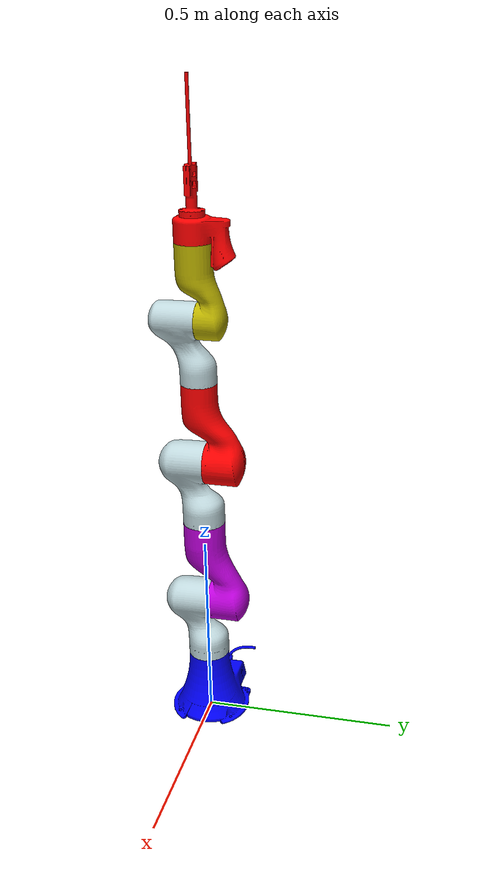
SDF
<?xml version="1.0"?>
<sdf version='1.10'>
  <world name="xmate_world">
    <model name='xmate'>
      <joint name="panda_joint_world" type="fixed">
        <parent>world</parent>
        <child>base_link</child>
    </joint>
      <link name='base_link'>
        <inertial>
          <pose>-0.019088000000000001 4.4427e-05 0.06241 0 0 0</pose>
          <mass>3.1488</mass>
          <inertia>
            <ixx>0.011844</ixx>
            <ixy>2.9235999999999999e-05</ixy>
            <ixz>-0.0019436</ixz>
            <iyy>0.016485</iyy>
            <iyz>5.2961e-06</iyz>
            <izz>0.013575</izz>
          </inertia>
        </inertial>
        <collision name='base_link_collision'>
          <pose>0 0 0 0 0 0</pose>
          <geometry>
            <mesh>
              <scale>1 1 1</scale>
              <uri>meshes/base_link.STL</uri>
            </mesh>
          </geometry>
        </collision>
        <visual name='base_link_visual'>
          <pose>0 0 0 0 0 0</pose>
          <geometry>
            <mesh>
              <scale>1 1 1</scale>
              <uri>meshes/base_link.STL</uri>
            </mesh>
          </geometry>
          <material>
            <diffuse>0.0 0.0 1.0 1</diffuse>
            <ambient>0.0 0.0 1.0 1</ambient>
            <specular>1.0 1.0 1.0 1</specular>
          </material>
        </visual>
      </link>
      <joint name='joint1' type='revolute'>
        <pose relative_to='base_link'>0 0 0.34150000000000003 0 0 0</pose>
        <parent>base_link</parent>
        <child>link1</child>
        <axis>
          <xyz>0 0 -1</xyz>
          <limit>
            <lower>-2.9670000000000001</lower>
            <upper>2.9670000000000001</upper>
            <effort>94</effort>
            <velocity>1.5708</velocity>
          </limit>
          <dynamics>
            <spring_reference>0</spring_reference>
            <spring_stiffness>0</spring_stiffness>
          </dynamics>
        </axis>
      </joint>
      <link name='link1'>
        <pose relative_to='joint1'>0 0 0 0 0 0</pose>
        <inertial>
          <pose>3.7179999999999998e-06 -0.025274000000000001 -0.053443999999999998 0 0 0</pose>
          <mass>1.8005</mass>
          <inertia>
            <ixx>0.0095697999999999998</ixx>
            <ixy>-6.8655999999999998e-07</ixy>
            <ixz>-4.8250000000000004e-07</ixz>
            <iyy>0.0085643000000000004</iyy>
            <iyz>0.0019572999999999999</iyz>
            <izz>0.0033056000000000001</izz>
          </inertia>
        </inertial>
        <collision name='link1_collision'>
          <pose>0 0 0 0 0 0</pose>
          <geometry>
            <mesh>
              <scale>1 1 1</scale>
              <uri>meshes/link1.STL</uri>
            </mesh>
          </geometry>
        </collision>
        <visual name='link1_visual'>
          <pose>0 0 0 0 0 0</pose>
          <geometry>
            <mesh>
              <scale>1 1 1</scale>
              <uri>meshes/link1.STL</uri>
            </mesh>
          </geometry>
          <material>
            <ambient>0.740199983 0.833337545 0.85293746 1</ambient>
            <specular>0.740199983 0.833337545 0.85293746 1</specular>
          </material>
        </visual>
      </link>
      <joint name='joint2' type='revolute'>
        <pose relative_to='link1'>0 0 0 1.5708 0 0</pose>
        <parent>link1</parent>
        <child>link2</child>
        <axis>
          <xyz>0 0 1</xyz>
          <limit>
            <lower>-2.0939999999999999</lower>
            <upper>2.0939999999999999</upper>
            <effort>110</effort>
            <velocity>1.5708</velocity>
          </limit>
          <dynamics>
            <spring_reference>0</spring_reference>
            <spring_stiffness>0</spring_stiffness>
          </dynamics>
        </axis>
      </joint>
      <link name='link2'>
        <pose relative_to='joint2'>0 0 0 0 0 0</pose>
        <inertial>
          <pose>-6.1017000000000004e-06 0.094687999999999994 -0.027636000000000001 0 0 0</pose>
          <mass>2.1852999999999998</mass>
          <inertia>
            <ixx>0.017961000000000001</ixx>
            <ixy>-2.0946e-07</ixy>
            <ixz>-7.2091000000000001e-07</ixz>
            <iyy>0.0044672999999999996</iyy>
            <iyz>-0.0045671000000000002</iyz>
            <izz>0.016295</izz>
          </inertia>
        </inertial>
        <collision name='link2_collision'>
          <pose>0 0 0 0 0 0</pose>
          <geometry>
            <mesh>
              <scale>1 1 1</scale>
              <uri>meshes/link2.STL</uri>
            </mesh>
          </geometry>
        </collision>
        <visual name='link2_visual'>
          <pose>0 0 0 0 0 0</pose>
          <geometry>
            <mesh>
              <scale>1 1 1</scale>
              <uri>meshes/link2.STL</uri>
            </mesh>
          </geometry>
          <material>
            <diffuse>0.740199983 0 0.85293746 1</diffuse>
            <ambient>0.740199983 0 0.85293746 1</ambient>
            <specular>1.0 1.0 1.0 1</specular>
          </material>
        </visual>
      </link>
      <joint name='joint3' type='revolute'>
        <pose relative_to='link2'>0 0.39399990552675401 0 -1.5707921336170201 0 0</pose>
        <parent>link2</parent>
        <child>link3</child>
        <axis>
          <xyz>0 0 -0.99999999999992595</xyz>
          <limit>
            <lower>-2.9670000000000001</lower>
            <upper>2.9670000000000001</upper>
            <effort>94</effort>
            <velocity>1.5708</velocity>
          </limit>
          <dynamics>
            <spring_reference>0</spring_reference>
            <spring_stiffness>0</spring_stiffness>
          </dynamics>
        </axis>
      </joint>
      <link name='link3'>
        <pose relative_to='joint3'>0 0 0 0 0 0</pose>
        <inertial>
          <pose>2.1156000000000001e-06 -0.025028000000000002 -0.053620000000000001 0 0 0</pose>
          <mass>1.7944</mass>
          <inertia>
            <ixx>0.0095218999999999998</ixx>
            <ixy>-6.2641000000000001e-07</ixy>
            <ixz>-6.1200000000000003e-07</ixz>
            <iyy>0.0085457999999999992</iyy>
            <iyz>0.0019369000000000001</iyz>
            <izz>0.0032759999999999998</izz>
          </inertia>
        </inertial>
        <collision name='link3_collision'>
          <pose>0 0 0 0 0 0</pose>
          <geometry>
            <mesh>
              <scale>1 1 1</scale>
              <uri>meshes/link3.STL</uri>
            </mesh>
          </geometry>
        </collision>
        <visual name='link3_visual'>
          <pose>0 0 0 0 0 0</pose>
          <geometry>
            <mesh>
              <scale>1 1 1</scale>
              <uri>meshes/link3.STL</uri>
            </mesh>
          </geometry>
          <material>
            <diffuse>0.740199983 0.833337545 0.85293746 1</diffuse>
            <ambient>0.740199983 0.833337545 0.85293746 1</ambient>
            <specular>1.0 1.0 1.0 1</specular>
          </material>
        </visual>
      </link>
      <joint name='joint4' type='revolute'>
        <pose relative_to='link3'>0 0 0 1.5707967678663599 0 0</pose>
        <parent>link3</parent>
        <child>link4</child>
        <axis>
          <xyz>0 0 1</xyz>
          <limit>
            <lower>-2.0939999999999999</lower>
            <upper>2.0939999999999999</upper>
            <effort>94</effort>
            <velocity>1.5708</velocity>
          </limit>
          <dynamics>
            <spring_reference>0</spring_reference>
            <spring_stiffness>0</spring_stiffness>
          </dynamics>
        </axis>
      </joint>
      <link name='link4'>
        <pose relative_to='joint4'>0 0 0 0 0 0</pose>
        <inertial>
          <pose>3.4697999999999998e-06 0.075813000000000005 -0.032772999999999997 0 0 0</pose>
          <mass>1.7968</mass>
          <inertia>
            <ixx>0.013063999999999999</ixx>
            <ixy>-8.1017999999999997e-07</ixy>
            <ixz>-2.1089e-07</ixz>
            <iyy>0.0033492000000000001</iyy>
            <iyz>-0.0034602000000000001</iyz>
            <izz>0.011734</izz>
          </inertia>
        </inertial>
        <collision name='link4_collision'>
          <pose>0 0 0 0 0 0</pose>
          <geometry>
            <mesh>
              <scale>1 1 1</scale>
              <uri>meshes/link4.STL</uri>
            </mesh>
          </geometry>
        </collision>
        <visual name='link4_visual'>
          <pose>0 0 0 0 0 0</pose>
          <geometry>
            <mesh>
              <scale>1 1 1</scale>
              <uri>meshes/link4.STL</uri>
            </mesh>
          </geometry>
          <material>
            <diffuse>1 0 0 1</diffuse>
            <ambient>1 1 1 1</ambient>
            <specular>1 0 0 1</specular>
          </material>
        </visual>
      </link>
      <joint name='joint5' type='revolute'>
        <pose relative_to='link4'>0 0.36599999999999999 0 -1.5708 0 0</pose>
        <parent>link4</parent>
        <child>link5</child>
        <axis>
          <xyz>0 0 -1</xyz>
          <limit>
            <lower>-2.9670000000000001</lower>
            <upper>2.9670000000000001</upper>
            <effort>29</effort>
            <velocity>1.9624999999999999</velocity>
          </limit>
          <dynamics>
            <spring_reference>0</spring_reference>
            <spring_stiffness>0</spring_stiffness>
          </dynamics>
        </axis>
      </joint>
      <link name='link5'>
        <pose relative_to='joint5'>0 0 0 0 0 0</pose>
        <inertial>
          <pose>1.21714844333112e-05 -0.031276169623672002 -0.045700606921044197 0 0 0</pose>
          <mass>1.2958128243652101</mass>
          <inertia>
            <ixx>0.0059855193315267096</ixx>
            <ixy>-4.76355081923921e-07</ixy>
            <ixz>5.4571642264800105e-07</ixz>
            <iyy>0.00489832818590761</iyy>
            <iyz>0.00152655463457091</iyz>
            <izz>0.00226748492439003</izz>
          </inertia>
        </inertial>
        <collision name='link5_collision'>
          <pose>0 0 0 0 0 0</pose>
          <geometry>
            <mesh>
              <scale>1 1 1</scale>
              <uri>meshes/link5.STL</uri>
            </mesh>
          </geometry>
        </collision>
        <visual name='link5_visual'>
          <pose>0 0 0 0 0 0</pose>
          <geometry>
            <mesh>
              <scale>1 1 1</scale>
              <uri>meshes/link5.STL</uri>
            </mesh>
          </geometry>
          <material>
            <diffuse>0.740196109 0.833333373 0.852941215 1</diffuse>
            <specular>0.740196109 0.833333373 0.852941215 1</specular>
          </material>
        </visual>
      </link>
      <joint name='joint6' type='revolute'>
        <pose relative_to='link5'>0 0 0 1.5707963267949003 0 0</pose>
        <parent>link5</parent>
        <child>link6</child>
        <axis>
          <xyz>0 0 1</xyz>
          <limit>
            <lower>-2.0939999999999999</lower>
            <upper>2.0939999999999999</upper>
            <effort>29</effort>
            <velocity>1.9624999999999999</velocity>
          </limit>
          <dynamics>
            <spring_reference>0</spring_reference>
            <spring_stiffness>0</spring_stiffness>
          </dynamics>
        </axis>
      </joint>
      <link name='link6'>
        <pose relative_to='joint6'>0 0 0 0 0 0</pose>
        <inertial>
          <pose>1.2826000000000001e-05 0.084293999999999994 -0.015148999999999999 0 0 0</pose>
          <mass>1.2251000000000001</mass>
          <inertia>
            <ixx>0.0062840999999999999</ixx>
            <ixy>3.4424999999999998e-07</ixy>
            <ixz>1.1226e-07</ixz>
            <iyy>0.0014649000000000001</iyy>
            <iyz>-0.0012842000000000001</iyz>
            <izz>0.0059858000000000003</izz>
          </inertia>
        </inertial>
        <collision name='link6_collision'>
          <pose>0 0 0 0 0 0</pose>
          <geometry>
            <mesh>
              <scale>1 1 1</scale>
              <uri>meshes/link6.STL</uri>
            </mesh>
          </geometry>
        </collision>
        <visual name='link6_visual'>
          <pose>0 0 0 0 0 0</pose>
          <geometry>
            <mesh>
              <scale>1 1 1</scale>
              <uri>meshes/link6.STL</uri>
            </mesh>
          </geometry>
          <material>
            <diffuse>0.740199983 0.7 0 1</diffuse>
            <ambient>0.740199983 0.7 0 1</ambient>
            <specular>0.740199983 0.7 0 1</specular>
          </material>
        </visual>
      </link>
      <joint name='joint7' type='revolute'>
        <pose relative_to='link6'>0 0.25029999994029001 0.00038204393466717502 -1.5707963267949003 0 0</pose>
        <parent>link6</parent>
        <child>link7</child>
        <axis>
          <xyz>0 0 -1</xyz>
          <limit>
            <lower>-6.2800000000000002</lower>
            <upper>6.2800000000000002</upper>
            <effort>29</effort>
            <velocity>1.9624999999999999</velocity>
          </limit>
          <dynamics>
            <spring_reference>0</spring_reference>
            <spring_stiffness>0</spring_stiffness>
          </dynamics>
        </axis>
      </joint>
      <link name='link7'>
        <pose relative_to='joint7'>0 0 0 0 0 0</pose>
        <inertial>
          <pose>3.1180000000000003e-05 0.019817999999999999 -0.027775000000000001 0 0 0</pose>
          <mass>0.64405000000000001</mass>
          <inertia>
            <ixx>0.0013047</ixx>
            <ixy>-2.2980000000000001e-07</ixy>
            <ixz>-6.1879000000000005e-07</ixz>
            <iyy>0.00079066</iyy>
            <iyz>0.00027873999999999998</iyz>
            <izz>0.0009789</izz>
          </inertia>
        </inertial>
        <collision name='link7_collision'>
          <pose>0 0 0 0 0 0</pose>
          <geometry>
            <mesh>
              <scale>1 1 1</scale>
              <uri>meshes/link7.STL</uri>
            </mesh>
          </geometry>
        </collision>
        <visual name='link7_visual'>
          <pose>0 0 0 0 0 0</pose>
          <geometry>
            <mesh>
              <scale>1 1 1</scale>
              <uri>meshes/link7.STL</uri>
            </mesh>
          </geometry>
          <material>
            <diffuse>1 0 0 1</diffuse>
            <ambient>0.740199983 0.833337545 0.85293746 1</ambient>
            <specular>0.740199983 0.7 0 1</specular>
          </material>
        </visual>
      </link>
      <plugin
        filename="gz-sim-joint-position-controller-system"
        name="gz::sim::systems::JointPositionController">
        <joint_name>joint1</joint_name>
        <topic>rotor1</topic>
        <p_gain>100</p_gain>
        <i_gain>0</i_gain>
        <d_gain>50</d_gain>
        <i_max>1</i_max>
        <i_min>-1</i_min>
        <cmd_max>1000</cmd_max>
        <cmd_min>-1000</cmd_min>
      </plugin>
      <plugin
        filename="gz-sim-joint-position-controller-system"
        name="gz::sim::systems::JointPositionController">
        <joint_name>joint2</joint_name>
        <topic>rotor2</topic>
        <p_gain>100</p_gain>
        <i_gain>0</i_gain>
        <d_gain>50</d_gain>
        <i_max>1</i_max>
        <i_min>-1</i_min>
        <cmd_max>1000</cmd_max>
        <cmd_min>-1000</cmd_min>
      </plugin>
      <plugin
        filename="gz-sim-joint-position-controller-system"
        name="gz::sim::systems::JointPositionController">
        <joint_name>joint3</joint_name>
        <topic>rotor3</topic>
        <p_gain>100</p_gain>
        <i_gain>0</i_gain>
        <d_gain>50</d_gain>
        <i_max>1</i_max>
        <i_min>-1</i_min>
        <cmd_max>1000</cmd_max>
        <cmd_min>-1000</cmd_min>
      </plugin>
      <plugin
        filename="gz-sim-joint-position-controller-system"
        name="gz::sim::systems::JointPositionController">
        <joint_name>joint4</joint_name>
        <topic>rotor4</topic>
        <p_gain>100</p_gain>
        <i_gain>0</i_gain>
        <d_gain>50</d_gain>
        <i_max>1</i_max>
        <i_min>-1</i_min>
        <cmd_max>1000</cmd_max>
        <cmd_min>-1000</cmd_min>
      </plugin>
      <plugin
        filename="gz-sim-joint-position-controller-system"
        name="gz::sim::systems::JointPositionController">
        <joint_name>joint5</joint_name>
        <topic>rotor5</topic>
        <p_gain>100</p_gain>
        <i_gain>0</i_gain>
        <d_gain>50</d_gain>
        <i_max>1</i_max>
        <i_min>-1</i_min>
        <cmd_max>1000</cmd_max>
        <cmd_min>-1000</cmd_min>
      </plugin>
      <plugin
        filename="gz-sim-joint-position-controller-system"
        name="gz::sim::systems::JointPositionController">
        <joint_name>joint6</joint_name>
        <topic>rotor6</topic>
        <p_gain>100</p_gain>
        <i_gain>0</i_gain>
        <d_gain>50</d_gain>
        <i_max>1</i_max>
        <i_min>-1</i_min>
        <cmd_max>1000</cmd_max>
        <cmd_min>-1000</cmd_min>
      </plugin>
      <plugin
        filename="gz-sim-joint-position-controller-system"
        name="gz::sim::systems::JointPositionController">
        <joint_name>joint7</joint_name>
        <topic>rotor7</topic>
        <p_gain>100</p_gain>
        <i_gain>0</i_gain>
        <d_gain>50</d_gain>
        <i_max>1</i_max>
        <i_min>-1</i_min>
        <cmd_max>1000</cmd_max>
        <cmd_min>-1000</cmd_min>
      </plugin>
    </model>
  </world>
</sdf>
